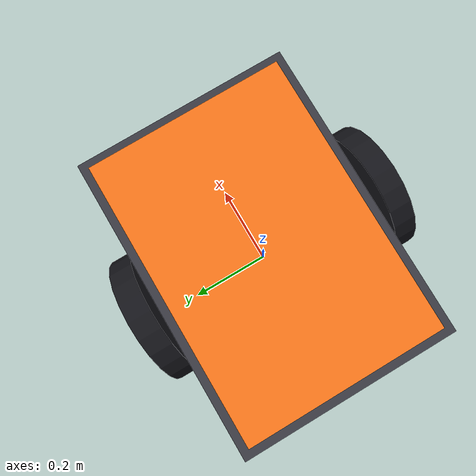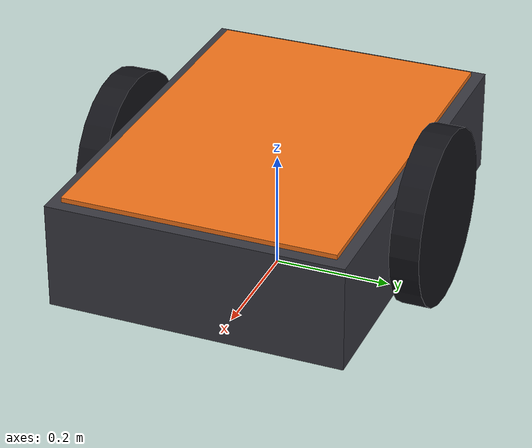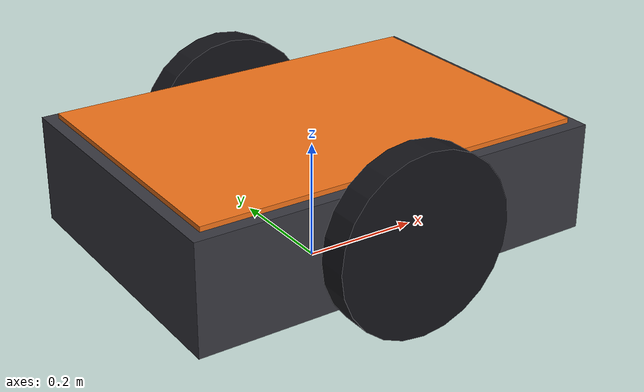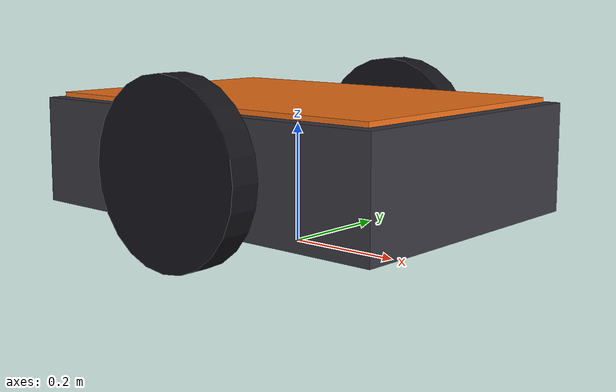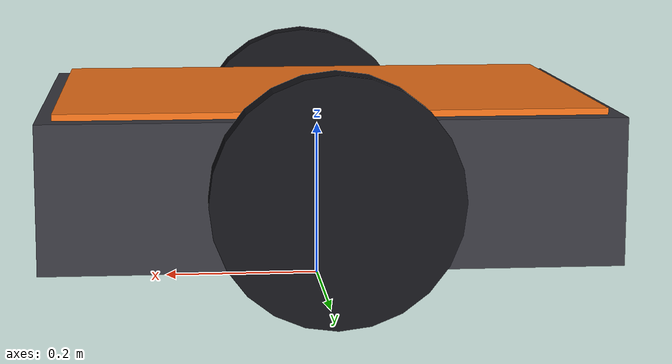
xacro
<?xml version="1.0" ?>
<robot name="bot" xmlns:xacro="http://www.ros.org/wiki/xacro">

  <!-- ── Inertia macros ──────────────────────────────────────────────── -->
  <xacro:macro name="box_inertia" params="m l w h">
    <!-- Solid box: l=x, w=y, h=z -->
    <inertia
      ixx="${m*(w*w + h*h)/12.0}"
      ixy="0" ixz="0"
      iyy="${m*(l*l + h*h)/12.0}"
      iyz="0"
      izz="${m*(l*l + w*w)/12.0}"/>
  </xacro:macro>

  <xacro:macro name="cylinder_inertia" params="m r h">
    <!-- Solid cylinder spinning about its own axis (z) -->
    <inertia
      ixx="${m*(3*r*r + h*h)/12.0}"
      ixy="0" ixz="0"
      iyy="${m*(3*r*r + h*h)/12.0}"
      iyz="0"
      izz="${m*r*r/2.0}"/>
  </xacro:macro>

  <xacro:macro name="sphere_inertia" params="m r">
    <inertia
      ixx="${2*m*r*r/5.0}"
      ixy="0" ixz="0"
      iyy="${2*m*r*r/5.0}"
      iyz="0"
      izz="${2*m*r*r/5.0}"/>
  </xacro:macro>

  <!-- ── Chassis dimensions ─────────────────────────────────────────── -->
  <xacro:property name="chassis_l"  value="0.70"/>
  <xacro:property name="chassis_w"  value="0.50"/>
  <xacro:property name="chassis_h"  value="0.18"/>
  <xacro:property name="chassis_m"  value="5.0"/>

  <xacro:property name="wheel_r"    value="0.15"/>
  <xacro:property name="wheel_len"  value="0.05"/>
  <xacro:property name="wheel_m"    value="1.0"/>
  <xacro:property name="wheel_sep"  value="0.275"/>  <!-- half wheel-to-wheel distance -->

  <xacro:property name="caster_r"   value="0.045"/>
  <xacro:property name="caster_m"   value="0.4"/>

  <!-- ── base_footprint ─────────────────────────────────────────────── -->
  <link name="base_footprint"/>

  <!-- ── base_link (chassis) ───────────────────────────────────────── -->
  <link name="base_link">
    <inertial>
      <origin xyz="0 0 0" rpy="0 0 0"/>
      <mass value="${chassis_m}"/>
      <xacro:box_inertia m="${chassis_m}" l="${chassis_l}" w="${chassis_w}" h="${chassis_h}"/>
    </inertial>

    <!-- Main chassis body -->
    <visual>
      <origin xyz="0 0 0" rpy="0 0 0"/>
      <geometry><box size="${chassis_l} ${chassis_w} ${chassis_h}"/></geometry>
      <material name="chassis_grey">
        <color rgba="0.22 0.22 0.25 1.0"/>
      </material>
    </visual>

    <!-- Top accent plate -->
    <visual>
      <origin xyz="0 0 ${chassis_h*0.5 + 0.005}" rpy="0 0 0"/>
      <geometry><box size="${chassis_l - 0.04} ${chassis_w - 0.04} 0.008"/></geometry>
      <material name="accent_orange">
        <color rgba="0.95 0.45 0.10 1.0"/>
      </material>
    </visual>

    <collision>
      <origin xyz="0 0 0" rpy="0 0 0"/>
      <geometry><box size="${chassis_l} ${chassis_w} ${chassis_h}"/></geometry>
    </collision>
  </link>

  <joint name="base_joint" type="fixed">
    <!-- chassis centre is wheel_r above floor, half chassis_h above base_footprint -->
    <origin xyz="0 0 ${wheel_r}" rpy="0 0 0"/>
    <parent link="base_footprint"/>
    <child  link="base_link"/>
  </joint>

  <!-- ── Right drive wheel ──────────────────────────────────────────── -->
  <!-- Positioned at Y = -wheel_sep; rotated so cylinder axis → Y-world  -->
  <link name="right_wheel_link">
    <inertial>
      <origin xyz="0 0 0" rpy="0 0 0"/>
      <mass value="${wheel_m}"/>
      <xacro:cylinder_inertia m="${wheel_m}" r="${wheel_r}" h="${wheel_len}"/>
    </inertial>
    <visual>
      <origin xyz="0 0 0" rpy="0 0 0"/>
      <geometry><cylinder radius="${wheel_r}" length="${wheel_len}"/></geometry>
      <material name="wheel_dark">
        <color rgba="0.08 0.08 0.10 1.0"/>
      </material>
    </visual>
    <collision>
      <origin xyz="0 0 0" rpy="0 0 0"/>
      <geometry><cylinder radius="${wheel_r}" length="${wheel_len}"/></geometry>
    </collision>
  </link>

  <joint name="right_wheel_joint" type="continuous">
    <!-- rpy 1.57 = 90° so cylinder z-axis → world y-axis (drive direction) -->
    <origin xyz="0 ${-wheel_sep} 0" rpy="${pi/2} 0 0"/>
    <parent link="base_link"/>
    <child  link="right_wheel_link"/>
    <axis   xyz="0 0 -1"/>
  </joint>

  <!-- ── Left drive wheel ───────────────────────────────────────────── -->
  <link name="left_wheel_link">
    <inertial>
      <origin xyz="0 0 0" rpy="0 0 0"/>
      <mass value="${wheel_m}"/>
      <xacro:cylinder_inertia m="${wheel_m}" r="${wheel_r}" h="${wheel_len}"/>
    </inertial>
    <visual>
      <origin xyz="0 0 0" rpy="0 0 0"/>
      <geometry><cylinder radius="${wheel_r}" length="${wheel_len}"/></geometry>
      <material name="wheel_dark"/>
    </visual>
    <collision>
      <origin xyz="0 0 0" rpy="0 0 0"/>
      <geometry><cylinder radius="${wheel_r}" length="${wheel_len}"/></geometry>
    </collision>
  </link>

  <joint name="left_wheel_joint" type="continuous">
    <origin xyz="0 ${wheel_sep} 0" rpy="${pi/2} 0 0"/>
    <parent link="base_link"/>
    <child  link="left_wheel_link"/>
    <axis   xyz="0 0 -1"/>
  </joint>

  <!-- ── Front caster ───────────────────────────────────────────────── -->
  <!-- z offset = -(chassis_h/2 + caster_r) so sphere just touches floor -->
  <link name="front_caster_link">
    <inertial>
      <origin xyz="0 0 0" rpy="0 0 0"/>
      <mass value="${caster_m}"/>
      <xacro:sphere_inertia m="${caster_m}" r="${caster_r}"/>
    </inertial>
    <visual>
      <origin xyz="0 0 0" rpy="0 0 0"/>
      <geometry><sphere radius="${caster_r}"/></geometry>
      <material name="caster_silver">
        <color rgba="0.7 0.7 0.75 1.0"/>
      </material>
    </visual>
    <collision>
      <origin xyz="0 0 0" rpy="0 0 0"/>
      <geometry><sphere radius="${caster_r}"/></geometry>
    </collision>
  </link>

  <joint name="front_caster_joint" type="fixed">
    <origin xyz="${chassis_l*0.36} 0 ${-(chassis_h/2.0 + caster_r - wheel_r)}" rpy="0 0 0"/>
    <parent link="base_link"/>
    <child  link="front_caster_link"/>
  </joint>

  <!-- ── Rear caster ────────────────────────────────────────────────── -->
  <link name="back_caster_link">
    <inertial>
      <origin xyz="0 0 0" rpy="0 0 0"/>
      <mass value="${caster_m}"/>
      <xacro:sphere_inertia m="${caster_m}" r="${caster_r}"/>
    </inertial>
    <visual>
      <origin xyz="0 0 0" rpy="0 0 0"/>
      <geometry><sphere radius="${caster_r}"/></geometry>
      <material name="caster_silver"/>
    </visual>
    <collision>
      <origin xyz="0 0 0" rpy="0 0 0"/>
      <geometry><sphere radius="${caster_r}"/></geometry>
    </collision>
  </link>

  <joint name="back_caster_joint" type="fixed">
    <origin xyz="${-chassis_l*0.36} 0 ${-(chassis_h/2.0 + caster_r - wheel_r)}" rpy="0 0 0"/>
    <parent link="base_link"/>
    <child  link="back_caster_link"/>
  </joint>

</robot>
